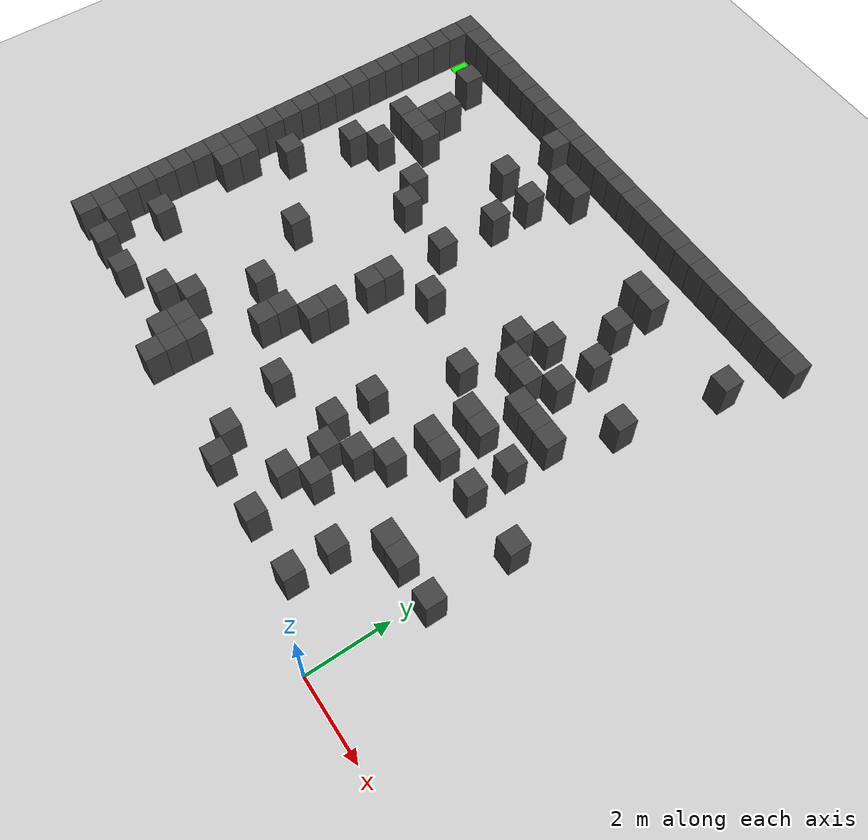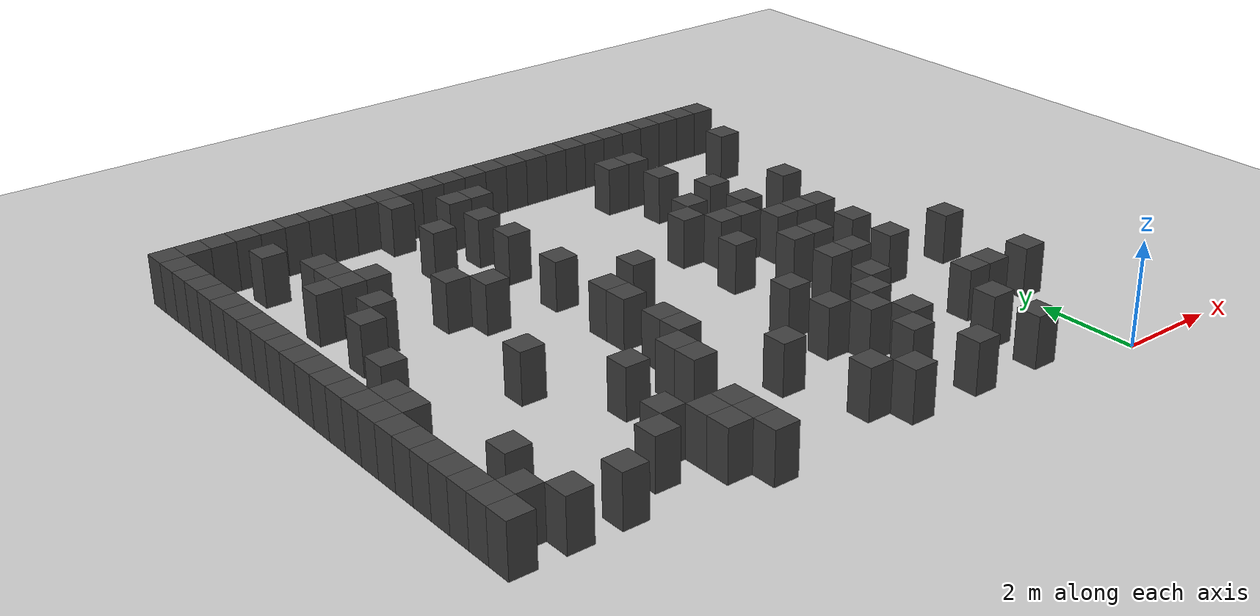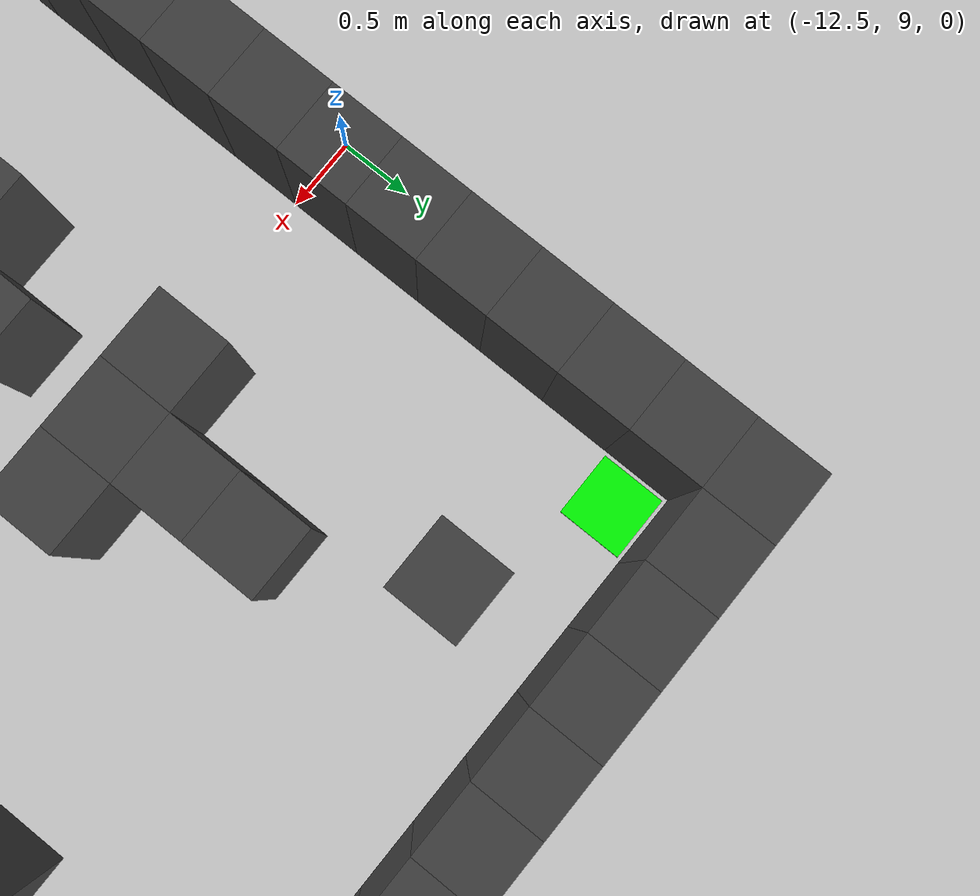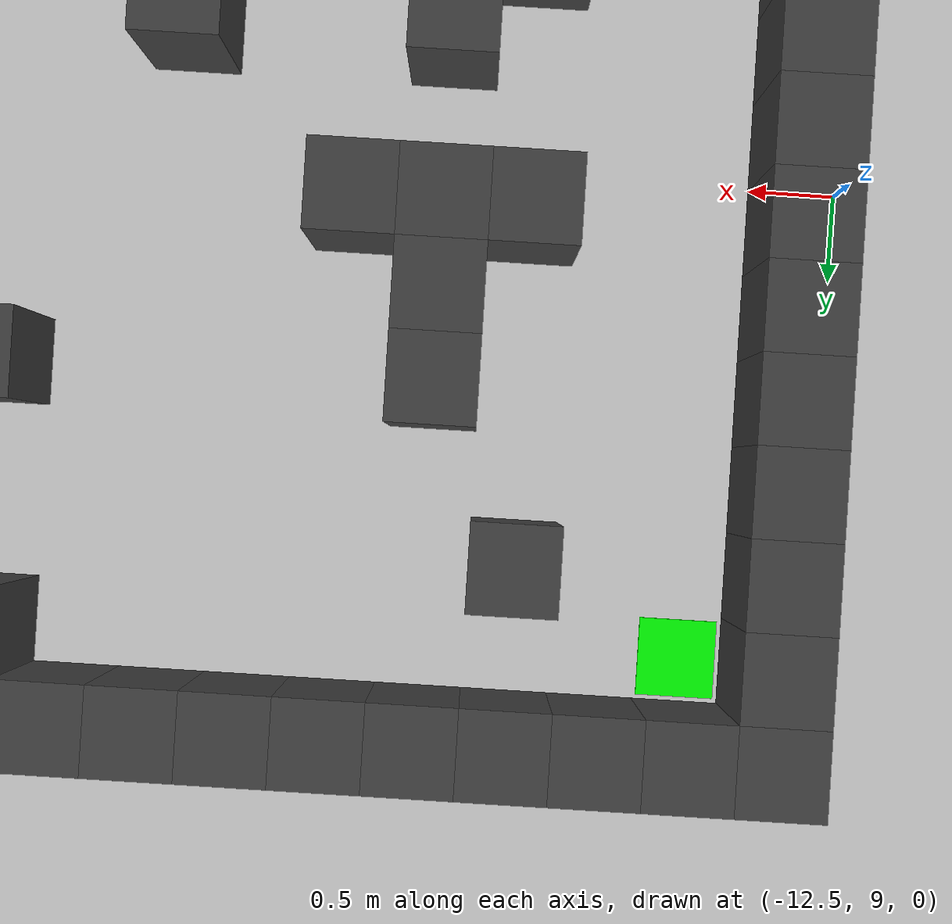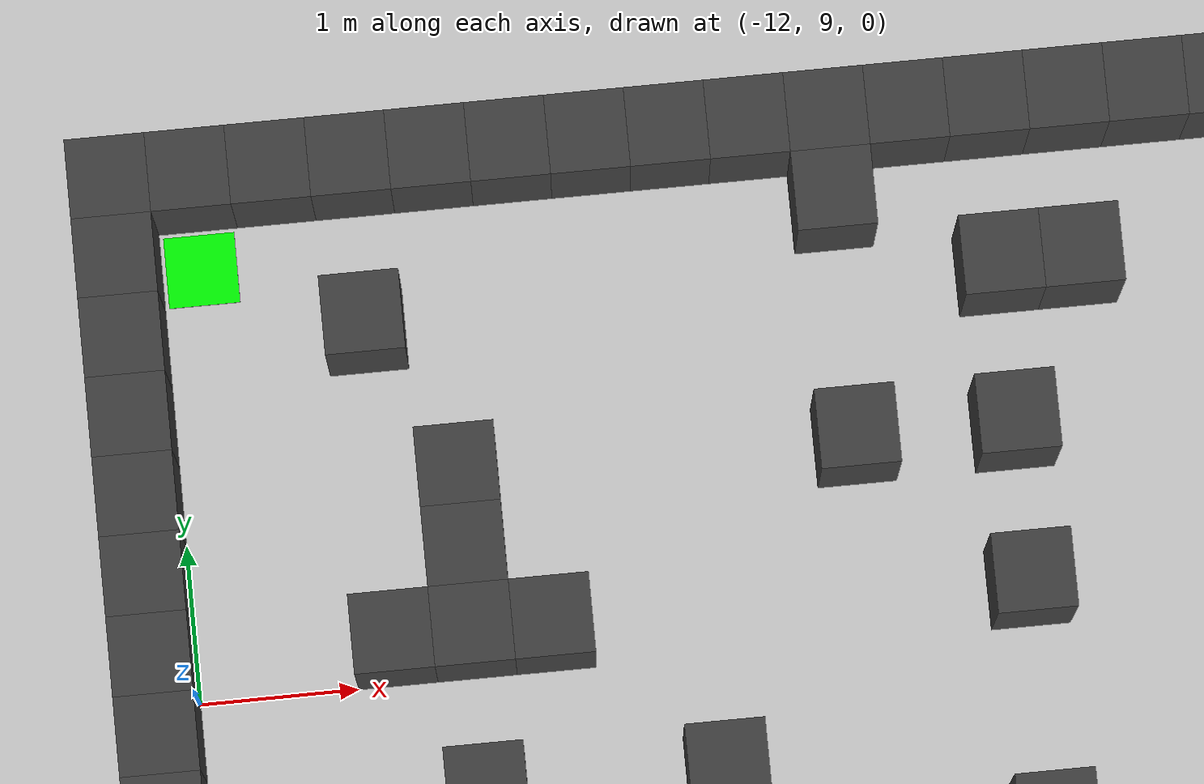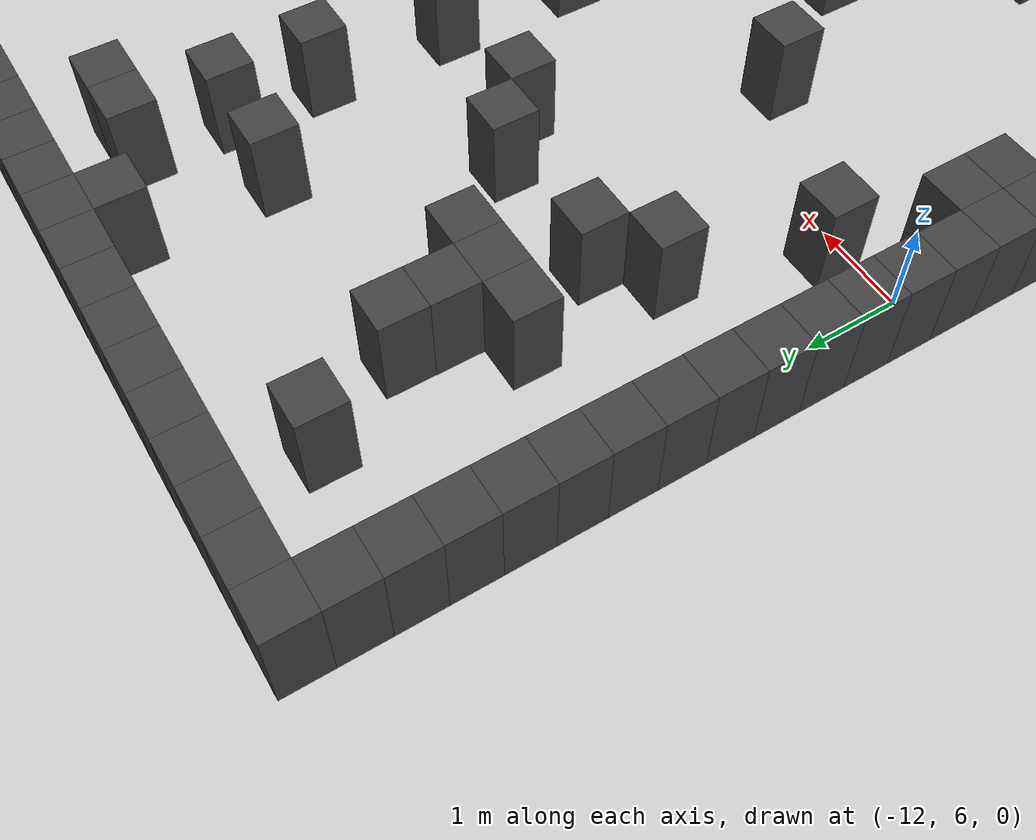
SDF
<sdf version="1.7">
 <world name="map_2627">
  <model name="ground_plane">
   <static>true</static>
   <link name="link">
    <collision name="collision">
     <geometry><plane><normal>0 0 1</normal><size>200 200</size></plane></geometry>
    </collision>
    <visual name="visual">
     <geometry><plane><normal>0 0 1</normal><size>200 200</size></plane></geometry>
     <material><ambient>0.8 0.8 0.8 1</ambient><diffuse>0.8 0.8 0.8 1</diffuse></material>
    </visual>
   </link>
  </model>
  <model name="maze_environment">
   <static>true</static>
   <link name="wall_0">
    <pose>-12.250 12.250 0.500 0 0 0</pose>
    <collision name="col"><geometry><box><size>0.5 0.5 1.0</size></box></geometry></collision>
    <visual name="vis">
     <geometry><box><size>0.5 0.5 1.0</size></box></geometry>
     <material><ambient>0.15 0.15 0.15 1</ambient><diffuse>0.25 0.25 0.25 1</diffuse></material>
    </visual>
   </link>
   <link name="wall_1">
    <pose>-11.750 12.250 0.500 0 0 0</pose>
    <collision name="col"><geometry><box><size>0.5 0.5 1.0</size></box></geometry></collision>
    <visual name="vis">
     <geometry><box><size>0.5 0.5 1.0</size></box></geometry>
     <material><ambient>0.15 0.15 0.15 1</ambient><diffuse>0.25 0.25 0.25 1</diffuse></material>
    </visual>
   </link>
   <link name="wall_2">
    <pose>-11.250 12.250 0.500 0 0 0</pose>
    <collision name="col"><geometry><box><size>0.5 0.5 1.0</size></box></geometry></collision>
    <visual name="vis">
     <geometry><box><size>0.5 0.5 1.0</size></box></geometry>
     <material><ambient>0.15 0.15 0.15 1</ambient><diffuse>0.25 0.25 0.25 1</diffuse></material>
    </visual>
   </link>
   <link name="wall_3">
    <pose>-10.750 12.250 0.500 0 0 0</pose>
    <collision name="col"><geometry><box><size>0.5 0.5 1.0</size></box></geometry></collision>
    <visual name="vis">
     <geometry><box><size>0.5 0.5 1.0</size></box></geometry>
     <material><ambient>0.15 0.15 0.15 1</ambient><diffuse>0.25 0.25 0.25 1</diffuse></material>
    </visual>
   </link>
   <link name="wall_4">
    <pose>-10.250 12.250 0.500 0 0 0</pose>
    <collision name="col"><geometry><box><size>0.5 0.5 1.0</size></box></geometry></collision>
    <visual name="vis">
     <geometry><box><size>0.5 0.5 1.0</size></box></geometry>
     <material><ambient>0.15 0.15 0.15 1</ambient><diffuse>0.25 0.25 0.25 1</diffuse></material>
    </visual>
   </link>
   <link name="wall_5">
    <pose>-9.750 12.250 0.500 0 0 0</pose>
    <collision name="col"><geometry><box><size>0.5 0.5 1.0</size></box></geometry></collision>
    <visual name="vis">
     <geometry><box><size>0.5 0.5 1.0</size></box></geometry>
     <material><ambient>0.15 0.15 0.15 1</ambient><diffuse>0.25 0.25 0.25 1</diffuse></material>
    </visual>
   </link>
   <link name="wall_6">
    <pose>-9.250 12.250 0.500 0 0 0</pose>
    <collision name="col"><geometry><box><size>0.5 0.5 1.0</size></box></geometry></collision>
    <visual name="vis">
     <geometry><box><size>0.5 0.5 1.0</size></box></geometry>
     <material><ambient>0.15 0.15 0.15 1</ambient><diffuse>0.25 0.25 0.25 1</diffuse></material>
    </visual>
   </link>
   <link name="wall_7">
    <pose>-8.750 12.250 0.500 0 0 0</pose>
    <collision name="col"><geometry><box><size>0.5 0.5 1.0</size></box></geometry></collision>
    <visual name="vis">
     <geometry><box><size>0.5 0.5 1.0</size></box></geometry>
     <material><ambient>0.15 0.15 0.15 1</ambient><diffuse>0.25 0.25 0.25 1</diffuse></material>
    </visual>
   </link>
   <link name="wall_8">
    <pose>-8.250 12.250 0.500 0 0 0</pose>
    <collision name="col"><geometry><box><size>0.5 0.5 1.0</size></box></geometry></collision>
    <visual name="vis">
     <geometry><box><size>0.5 0.5 1.0</size></box></geometry>
     <material><ambient>0.15 0.15 0.15 1</ambient><diffuse>0.25 0.25 0.25 1</diffuse></material>
    </visual>
   </link>
   <link name="wall_9">
    <pose>-7.750 12.250 0.500 0 0 0</pose>
    <collision name="col"><geometry><box><size>0.5 0.5 1.0</size></box></geometry></collision>
    <visual name="vis">
     <geometry><box><size>0.5 0.5 1.0</size></box></geometry>
     <material><ambient>0.15 0.15 0.15 1</ambient><diffuse>0.25 0.25 0.25 1</diffuse></material>
    </visual>
   </link>
   <link name="wall_10">
    <pose>-7.250 12.250 0.500 0 0 0</pose>
    <collision name="col"><geometry><box><size>0.5 0.5 1.0</size></box></geometry></collision>
    <visual name="vis">
     <geometry><box><size>0.5 0.5 1.0</size></box></geometry>
     <material><ambient>0.15 0.15 0.15 1</ambient><diffuse>0.25 0.25 0.25 1</diffuse></material>
    </visual>
   </link>
   <link name="wall_11">
    <pose>-6.750 12.250 0.500 0 0 0</pose>
    <collision name="col"><geometry><box><size>0.5 0.5 1.0</size></box></geometry></collision>
    <visual name="vis">
     <geometry><box><size>0.5 0.5 1.0</size></box></geometry>
     <material><ambient>0.15 0.15 0.15 1</ambient><diffuse>0.25 0.25 0.25 1</diffuse></material>
    </visual>
   </link>
   <link name="wall_12">
    <pose>-6.250 12.250 0.500 0 0 0</pose>
    <collision name="col"><geometry><box><size>0.5 0.5 1.0</size></box></geometry></collision>
    <visual name="vis">
     <geometry><box><size>0.5 0.5 1.0</size></box></geometry>
     <material><ambient>0.15 0.15 0.15 1</ambient><diffuse>0.25 0.25 0.25 1</diffuse></material>
    </visual>
   </link>
   <link name="wall_13">
    <pose>-5.750 12.250 0.500 0 0 0</pose>
    <collision name="col"><geometry><box><size>0.5 0.5 1.0</size></box></geometry></collision>
    <visual name="vis">
     <geometry><box><size>0.5 0.5 1.0</size></box></geometry>
     <material><ambient>0.15 0.15 0.15 1</ambient><diffuse>0.25 0.25 0.25 1</diffuse></material>
    </visual>
   </link>
   <link name="wall_14">
    <pose>-5.250 12.250 0.500 0 0 0</pose>
    <collision name="col"><geometry><box><size>0.5 0.5 1.0</size></box></geometry></collision>
    <visual name="vis">
     <geometry><box><size>0.5 0.5 1.0</size></box></geometry>
     <material><ambient>0.15 0.15 0.15 1</ambient><diffuse>0.25 0.25 0.25 1</diffuse></material>
    </visual>
   </link>
   <link name="wall_15">
    <pose>-4.750 12.250 0.500 0 0 0</pose>
    <collision name="col"><geometry><box><size>0.5 0.5 1.0</size></box></geometry></collision>
    <visual name="vis">
     <geometry><box><size>0.5 0.5 1.0</size></box></geometry>
     <material><ambient>0.15 0.15 0.15 1</ambient><diffuse>0.25 0.25 0.25 1</diffuse></material>
    </visual>
   </link>
   <link name="wall_16">
    <pose>-4.250 12.250 0.500 0 0 0</pose>
    <collision name="col"><geometry><box><size>0.5 0.5 1.0</size></box></geometry></collision>
    <visual name="vis">
     <geometry><box><size>0.5 0.5 1.0</size></box></geometry>
     <material><ambient>0.15 0.15 0.15 1</ambient><diffuse>0.25 0.25 0.25 1</diffuse></material>
    </visual>
   </link>
   <link name="wall_17">
    <pose>-3.750 12.250 0.500 0 0 0</pose>
    <collision name="col"><geometry><box><size>0.5 0.5 1.0</size></box></geometry></collision>
    <visual name="vis">
     <geometry><box><size>0.5 0.5 1.0</size></box></geometry>
     <material><ambient>0.15 0.15 0.15 1</ambient><diffuse>0.25 0.25 0.25 1</diffuse></material>
    </visual>
   </link>
   <link name="wall_18">
    <pose>-3.250 12.250 0.500 0 0 0</pose>
    <collision name="col"><geometry><box><size>0.5 0.5 1.0</size></box></geometry></collision>
    <visual name="vis">
     <geometry><box><size>0.5 0.5 1.0</size></box></geometry>
     <material><ambient>0.15 0.15 0.15 1</ambient><diffuse>0.25 0.25 0.25 1</diffuse></material>
    </visual>
   </link>
   <link name="wall_19">
    <pose>-2.750 12.250 0.500 0 0 0</pose>
    <collision name="col"><geometry><box><size>0.5 0.5 1.0</size></box></geometry></collision>
    <visual name="vis">
     <geometry><box><size>0.5 0.5 1.0</size></box></geometry>
     <material><ambient>0.15 0.15 0.15 1</ambient><diffuse>0.25 0.25 0.25 1</diffuse></material>
    </visual>
   </link>
   <link name="wall_20">
    <pose>-2.250 12.250 0.500 0 0 0</pose>
    <collision name="col"><geometry><box><size>0.5 0.5 1.0</size></box></geometry></collision>
    <visual name="vis">
     <geometry><box><size>0.5 0.5 1.0</size></box></geometry>
     <material><ambient>0.15 0.15 0.15 1</ambient><diffuse>0.25 0.25 0.25 1</diffuse></material>
    </visual>
   </link>
   <link name="wall_21">
    <pose>-1.750 12.250 0.500 0 0 0</pose>
    <collision name="col"><geometry><box><size>0.5 0.5 1.0</size></box></geometry></collision>
    <visual name="vis">
     <geometry><box><size>0.5 0.5 1.0</size></box></geometry>
     <material><ambient>0.15 0.15 0.15 1</ambient><diffuse>0.25 0.25 0.25 1</diffuse></material>
    </visual>
   </link>
   <link name="wall_22">
    <pose>-1.250 12.250 0.500 0 0 0</pose>
    <collision name="col"><geometry><box><size>0.5 0.5 1.0</size></box></geometry></collision>
    <visual name="vis">
     <geometry><box><size>0.5 0.5 1.0</size></box></geometry>
     <material><ambient>0.15 0.15 0.15 1</ambient><diffuse>0.25 0.25 0.25 1</diffuse></material>
    </visual>
   </link>
   <link name="wall_23">
    <pose>-0.750 12.250 0.500 0 0 0</pose>
    <collision name="col"><geometry><box><size>0.5 0.5 1.0</size></box></geometry></collision>
    <visual name="vis">
     <geometry><box><size>0.5 0.5 1.0</size></box></geometry>
     <material><ambient>0.15 0.15 0.15 1</ambient><diffuse>0.25 0.25 0.25 1</diffuse></material>
    </visual>
   </link>
   <link name="wall_24">
    <pose>-0.250 12.250 0.500 0 0 0</pose>
    <collision name="col"><geometry><box><size>0.5 0.5 1.0</size></box></geometry></collision>
    <visual name="vis">
     <geometry><box><size>0.5 0.5 1.0</size></box></geometry>
     <material><ambient>0.15 0.15 0.15 1</ambient><diffuse>0.25 0.25 0.25 1</diffuse></material>
    </visual>
   </link>
   <link name="wall_25">
    <pose>0.250 12.250 0.500 0 0 0</pose>
    <collision name="col"><geometry><box><size>0.5 0.5 1.0</size></box></geometry></collision>
    <visual name="vis">
     <geometry><box><size>0.5 0.5 1.0</size></box></geometry>
     <material><ambient>0.15 0.15 0.15 1</ambient><diffuse>0.25 0.25 0.25 1</diffuse></material>
    </visual>
   </link>
   <link name="wall_50">
    <pose>-12.250 11.750 0.500 0 0 0</pose>
    <collision name="col"><geometry><box><size>0.5 0.5 1.0</size></box></geometry></collision>
    <visual name="vis">
     <geometry><box><size>0.5 0.5 1.0</size></box></geometry>
     <material><ambient>0.15 0.15 0.15 1</ambient><diffuse>0.25 0.25 0.25 1</diffuse></material>
    </visual>
   </link>
   <link name="wall_51">
    <pose>-7.750 11.750 0.500 0 0 0</pose>
    <collision name="col"><geometry><box><size>0.5 0.5 1.0</size></box></geometry></collision>
    <visual name="vis">
     <geometry><box><size>0.5 0.5 1.0</size></box></geometry>
     <material><ambient>0.15 0.15 0.15 1</ambient><diffuse>0.25 0.25 0.25 1</diffuse></material>
    </visual>
   </link>
   <link name="wall_54">
    <pose>-12.250 11.250 0.500 0 0 0</pose>
    <collision name="col"><geometry><box><size>0.5 0.5 1.0</size></box></geometry></collision>
    <visual name="vis">
     <geometry><box><size>0.5 0.5 1.0</size></box></geometry>
     <material><ambient>0.15 0.15 0.15 1</ambient><diffuse>0.25 0.25 0.25 1</diffuse></material>
    </visual>
   </link>
   <link name="wall_55">
    <pose>-10.750 11.250 0.500 0 0 0</pose>
    <collision name="col"><geometry><box><size>0.5 0.5 1.0</size></box></geometry></collision>
    <visual name="vis">
     <geometry><box><size>0.5 0.5 1.0</size></box></geometry>
     <material><ambient>0.15 0.15 0.15 1</ambient><diffuse>0.25 0.25 0.25 1</diffuse></material>
    </visual>
   </link>
   <link name="wall_56">
    <pose>-6.750 11.250 0.500 0 0 0</pose>
    <collision name="col"><geometry><box><size>0.5 0.5 1.0</size></box></geometry></collision>
    <visual name="vis">
     <geometry><box><size>0.5 0.5 1.0</size></box></geometry>
     <material><ambient>0.15 0.15 0.15 1</ambient><diffuse>0.25 0.25 0.25 1</diffuse></material>
    </visual>
   </link>
   <link name="wall_57">
    <pose>-6.250 11.250 0.500 0 0 0</pose>
    <collision name="col"><geometry><box><size>0.5 0.5 1.0</size></box></geometry></collision>
    <visual name="vis">
     <geometry><box><size>0.5 0.5 1.0</size></box></geometry>
     <material><ambient>0.15 0.15 0.15 1</ambient><diffuse>0.25 0.25 0.25 1</diffuse></material>
    </visual>
   </link>
   <link name="wall_62">
    <pose>-12.250 10.750 0.500 0 0 0</pose>
    <collision name="col"><geometry><box><size>0.5 0.5 1.0</size></box></geometry></collision>
    <visual name="vis">
     <geometry><box><size>0.5 0.5 1.0</size></box></geometry>
     <material><ambient>0.15 0.15 0.15 1</ambient><diffuse>0.25 0.25 0.25 1</diffuse></material>
    </visual>
   </link>
   <link name="wall_63">
    <pose>-3.250 10.750 0.500 0 0 0</pose>
    <collision name="col"><geometry><box><size>0.5 0.5 1.0</size></box></geometry></collision>
    <visual name="vis">
     <geometry><box><size>0.5 0.5 1.0</size></box></geometry>
     <material><ambient>0.15 0.15 0.15 1</ambient><diffuse>0.25 0.25 0.25 1</diffuse></material>
    </visual>
   </link>
   <link name="wall_64">
    <pose>-2.750 10.750 0.500 0 0 0</pose>
    <collision name="col"><geometry><box><size>0.5 0.5 1.0</size></box></geometry></collision>
    <visual name="vis">
     <geometry><box><size>0.5 0.5 1.0</size></box></geometry>
     <material><ambient>0.15 0.15 0.15 1</ambient><diffuse>0.25 0.25 0.25 1</diffuse></material>
    </visual>
   </link>
   <link name="wall_65">
    <pose>-0.250 10.750 0.500 0 0 0</pose>
    <collision name="col"><geometry><box><size>0.5 0.5 1.0</size></box></geometry></collision>
    <visual name="vis">
     <geometry><box><size>0.5 0.5 1.0</size></box></geometry>
     <material><ambient>0.15 0.15 0.15 1</ambient><diffuse>0.25 0.25 0.25 1</diffuse></material>
    </visual>
   </link>
   <link name="wall_68">
    <pose>-12.250 10.250 0.500 0 0 0</pose>
    <collision name="col"><geometry><box><size>0.5 0.5 1.0</size></box></geometry></collision>
    <visual name="vis">
     <geometry><box><size>0.5 0.5 1.0</size></box></geometry>
     <material><ambient>0.15 0.15 0.15 1</ambient><diffuse>0.25 0.25 0.25 1</diffuse></material>
    </visual>
   </link>
   <link name="wall_69">
    <pose>-10.250 10.250 0.500 0 0 0</pose>
    <collision name="col"><geometry><box><size>0.5 0.5 1.0</size></box></geometry></collision>
    <visual name="vis">
     <geometry><box><size>0.5 0.5 1.0</size></box></geometry>
     <material><ambient>0.15 0.15 0.15 1</ambient><diffuse>0.25 0.25 0.25 1</diffuse></material>
    </visual>
   </link>
   <link name="wall_70">
    <pose>-7.750 10.250 0.500 0 0 0</pose>
    <collision name="col"><geometry><box><size>0.5 0.5 1.0</size></box></geometry></collision>
    <visual name="vis">
     <geometry><box><size>0.5 0.5 1.0</size></box></geometry>
     <material><ambient>0.15 0.15 0.15 1</ambient><diffuse>0.25 0.25 0.25 1</diffuse></material>
    </visual>
   </link>
   <link name="wall_71">
    <pose>-6.750 10.250 0.500 0 0 0</pose>
    <collision name="col"><geometry><box><size>0.5 0.5 1.0</size></box></geometry></collision>
    <visual name="vis">
     <geometry><box><size>0.5 0.5 1.0</size></box></geometry>
     <material><ambient>0.15 0.15 0.15 1</ambient><diffuse>0.25 0.25 0.25 1</diffuse></material>
    </visual>
   </link>
   <link name="wall_77">
    <pose>-12.250 9.750 0.500 0 0 0</pose>
    <collision name="col"><geometry><box><size>0.5 0.5 1.0</size></box></geometry></collision>
    <visual name="vis">
     <geometry><box><size>0.5 0.5 1.0</size></box></geometry>
     <material><ambient>0.15 0.15 0.15 1</ambient><diffuse>0.25 0.25 0.25 1</diffuse></material>
    </visual>
   </link>
   <link name="wall_78">
    <pose>-10.250 9.750 0.500 0 0 0</pose>
    <collision name="col"><geometry><box><size>0.5 0.5 1.0</size></box></geometry></collision>
    <visual name="vis">
     <geometry><box><size>0.5 0.5 1.0</size></box></geometry>
     <material><ambient>0.15 0.15 0.15 1</ambient><diffuse>0.25 0.25 0.25 1</diffuse></material>
    </visual>
   </link>
   <link name="wall_79">
    <pose>-2.750 9.750 0.500 0 0 0</pose>
    <collision name="col"><geometry><box><size>0.5 0.5 1.0</size></box></geometry></collision>
    <visual name="vis">
     <geometry><box><size>0.5 0.5 1.0</size></box></geometry>
     <material><ambient>0.15 0.15 0.15 1</ambient><diffuse>0.25 0.25 0.25 1</diffuse></material>
    </visual>
   </link>
   <link name="wall_86">
    <pose>-12.250 9.250 0.500 0 0 0</pose>
    <collision name="col"><geometry><box><size>0.5 0.5 1.0</size></box></geometry></collision>
    <visual name="vis">
     <geometry><box><size>0.5 0.5 1.0</size></box></geometry>
     <material><ambient>0.15 0.15 0.15 1</ambient><diffuse>0.25 0.25 0.25 1</diffuse></material>
    </visual>
   </link>
   <link name="wall_87">
    <pose>-10.750 9.250 0.500 0 0 0</pose>
    <collision name="col"><geometry><box><size>0.5 0.5 1.0</size></box></geometry></collision>
    <visual name="vis">
     <geometry><box><size>0.5 0.5 1.0</size></box></geometry>
     <material><ambient>0.15 0.15 0.15 1</ambient><diffuse>0.25 0.25 0.25 1</diffuse></material>
    </visual>
   </link>
   <link name="wall_88">
    <pose>-10.250 9.250 0.500 0 0 0</pose>
    <collision name="col"><geometry><box><size>0.5 0.5 1.0</size></box></geometry></collision>
    <visual name="vis">
     <geometry><box><size>0.5 0.5 1.0</size></box></geometry>
     <material><ambient>0.15 0.15 0.15 1</ambient><diffuse>0.25 0.25 0.25 1</diffuse></material>
    </visual>
   </link>
   <link name="wall_89">
    <pose>-9.750 9.250 0.500 0 0 0</pose>
    <collision name="col"><geometry><box><size>0.5 0.5 1.0</size></box></geometry></collision>
    <visual name="vis">
     <geometry><box><size>0.5 0.5 1.0</size></box></geometry>
     <material><ambient>0.15 0.15 0.15 1</ambient><diffuse>0.25 0.25 0.25 1</diffuse></material>
    </visual>
   </link>
   <link name="wall_90">
    <pose>-6.750 9.250 0.500 0 0 0</pose>
    <collision name="col"><geometry><box><size>0.5 0.5 1.0</size></box></geometry></collision>
    <visual name="vis">
     <geometry><box><size>0.5 0.5 1.0</size></box></geometry>
     <material><ambient>0.15 0.15 0.15 1</ambient><diffuse>0.25 0.25 0.25 1</diffuse></material>
    </visual>
   </link>
   <link name="wall_97">
    <pose>-12.250 8.750 0.500 0 0 0</pose>
    <collision name="col"><geometry><box><size>0.5 0.5 1.0</size></box></geometry></collision>
    <visual name="vis">
     <geometry><box><size>0.5 0.5 1.0</size></box></geometry>
     <material><ambient>0.15 0.15 0.15 1</ambient><diffuse>0.25 0.25 0.25 1</diffuse></material>
    </visual>
   </link>
   <link name="wall_98">
    <pose>-2.250 8.750 0.500 0 0 0</pose>
    <collision name="col"><geometry><box><size>0.5 0.5 1.0</size></box></geometry></collision>
    <visual name="vis">
     <geometry><box><size>0.5 0.5 1.0</size></box></geometry>
     <material><ambient>0.15 0.15 0.15 1</ambient><diffuse>0.25 0.25 0.25 1</diffuse></material>
    </visual>
   </link>
   <link name="wall_105">
    <pose>-12.250 8.250 0.500 0 0 0</pose>
    <collision name="col"><geometry><box><size>0.5 0.5 1.0</size></box></geometry></collision>
    <visual name="vis">
     <geometry><box><size>0.5 0.5 1.0</size></box></geometry>
     <material><ambient>0.15 0.15 0.15 1</ambient><diffuse>0.25 0.25 0.25 1</diffuse></material>
    </visual>
   </link>
   <link name="wall_106">
    <pose>-10.250 8.250 0.500 0 0 0</pose>
    <collision name="col"><geometry><box><size>0.5 0.5 1.0</size></box></geometry></collision>
    <visual name="vis">
     <geometry><box><size>0.5 0.5 1.0</size></box></geometry>
     <material><ambient>0.15 0.15 0.15 1</ambient><diffuse>0.25 0.25 0.25 1</diffuse></material>
    </visual>
   </link>
   <link name="wall_107">
    <pose>-8.750 8.250 0.500 0 0 0</pose>
    <collision name="col"><geometry><box><size>0.5 0.5 1.0</size></box></geometry></collision>
    <visual name="vis">
     <geometry><box><size>0.5 0.5 1.0</size></box></geometry>
     <material><ambient>0.15 0.15 0.15 1</ambient><diffuse>0.25 0.25 0.25 1</diffuse></material>
    </visual>
   </link>
   <link name="wall_108">
    <pose>-3.250 8.250 0.500 0 0 0</pose>
    <collision name="col"><geometry><box><size>0.5 0.5 1.0</size></box></geometry></collision>
    <visual name="vis">
     <geometry><box><size>0.5 0.5 1.0</size></box></geometry>
     <material><ambient>0.15 0.15 0.15 1</ambient><diffuse>0.25 0.25 0.25 1</diffuse></material>
    </visual>
   </link>
   <link name="wall_109">
    <pose>-0.750 8.250 0.500 0 0 0</pose>
    <collision name="col"><geometry><box><size>0.5 0.5 1.0</size></box></geometry></collision>
    <visual name="vis">
     <geometry><box><size>0.5 0.5 1.0</size></box></geometry>
     <material><ambient>0.15 0.15 0.15 1</ambient><diffuse>0.25 0.25 0.25 1</diffuse></material>
    </visual>
   </link>
   <link name="wall_115">
    <pose>-12.250 7.750 0.500 0 0 0</pose>
    <collision name="col"><geometry><box><size>0.5 0.5 1.0</size></box></geometry></collision>
    <visual name="vis">
     <geometry><box><size>0.5 0.5 1.0</size></box></geometry>
     <material><ambient>0.15 0.15 0.15 1</ambient><diffuse>0.25 0.25 0.25 1</diffuse></material>
    </visual>
   </link>
   <link name="wall_116">
    <pose>-10.750 7.750 0.500 0 0 0</pose>
    <collision name="col"><geometry><box><size>0.5 0.5 1.0</size></box></geometry></collision>
    <visual name="vis">
     <geometry><box><size>0.5 0.5 1.0</size></box></geometry>
     <material><ambient>0.15 0.15 0.15 1</ambient><diffuse>0.25 0.25 0.25 1</diffuse></material>
    </visual>
   </link>
   <link name="wall_117">
    <pose>-8.250 7.750 0.500 0 0 0</pose>
    <collision name="col"><geometry><box><size>0.5 0.5 1.0</size></box></geometry></collision>
    <visual name="vis">
     <geometry><box><size>0.5 0.5 1.0</size></box></geometry>
     <material><ambient>0.15 0.15 0.15 1</ambient><diffuse>0.25 0.25 0.25 1</diffuse></material>
    </visual>
   </link>
   <link name="wall_118">
    <pose>-6.750 7.750 0.500 0 0 0</pose>
    <collision name="col"><geometry><box><size>0.5 0.5 1.0</size></box></geometry></collision>
    <visual name="vis">
     <geometry><box><size>0.5 0.5 1.0</size></box></geometry>
     <material><ambient>0.15 0.15 0.15 1</ambient><diffuse>0.25 0.25 0.25 1</diffuse></material>
    </visual>
   </link>
   <link name="wall_119">
    <pose>-3.750 7.750 0.500 0 0 0</pose>
    <collision name="col"><geometry><box><size>0.5 0.5 1.0</size></box></geometry></collision>
    <visual name="vis">
     <geometry><box><size>0.5 0.5 1.0</size></box></geometry>
     <material><ambient>0.15 0.15 0.15 1</ambient><diffuse>0.25 0.25 0.25 1</diffuse></material>
    </visual>
   </link>
   <link name="wall_120">
    <pose>-2.250 7.750 0.500 0 0 0</pose>
    <collision name="col"><geometry><box><size>0.5 0.5 1.0</size></box></geometry></collision>
    <visual name="vis">
     <geometry><box><size>0.5 0.5 1.0</size></box></geometry>
     <material><ambient>0.15 0.15 0.15 1</ambient><diffuse>0.25 0.25 0.25 1</diffuse></material>
    </visual>
   </link>
   <link name="wall_126">
    <pose>-12.250 7.250 0.500 0 0 0</pose>
    <collision name="col"><geometry><box><size>0.5 0.5 1.0</size></box></geometry></collision>
    <visual name="vis">
     <geometry><box><size>0.5 0.5 1.0</size></box></geometry>
     <material><ambient>0.15 0.15 0.15 1</ambient><diffuse>0.25 0.25 0.25 1</diffuse></material>
    </visual>
   </link>
   <link name="wall_127">
    <pose>-3.250 7.250 0.500 0 0 0</pose>
    <collision name="col"><geometry><box><size>0.5 0.5 1.0</size></box></geometry></collision>
    <visual name="vis">
     <geometry><box><size>0.5 0.5 1.0</size></box></geometry>
     <material><ambient>0.15 0.15 0.15 1</ambient><diffuse>0.25 0.25 0.25 1</diffuse></material>
    </visual>
   </link>
   <link name="wall_128">
    <pose>-2.750 7.250 0.500 0 0 0</pose>
    <collision name="col"><geometry><box><size>0.5 0.5 1.0</size></box></geometry></collision>
    <visual name="vis">
     <geometry><box><size>0.5 0.5 1.0</size></box></geometry>
     <material><ambient>0.15 0.15 0.15 1</ambient><diffuse>0.25 0.25 0.25 1</diffuse></material>
    </visual>
   </link>
   <link name="wall_133">
    <pose>-12.250 6.750 0.500 0 0 0</pose>
    <collision name="col"><geometry><box><size>0.5 0.5 1.0</size></box></geometry></collision>
    <visual name="vis">
     <geometry><box><size>0.5 0.5 1.0</size></box></geometry>
     <material><ambient>0.15 0.15 0.15 1</ambient><diffuse>0.25 0.25 0.25 1</diffuse></material>
    </visual>
   </link>
   <link name="wall_134">
    <pose>-5.750 6.750 0.500 0 0 0</pose>
    <collision name="col"><geometry><box><size>0.5 0.5 1.0</size></box></geometry></collision>
    <visual name="vis">
     <geometry><box><size>0.5 0.5 1.0</size></box></geometry>
     <material><ambient>0.15 0.15 0.15 1</ambient><diffuse>0.25 0.25 0.25 1</diffuse></material>
    </visual>
   </link>
   <link name="wall_135">
    <pose>-2.250 6.750 0.500 0 0 0</pose>
    <collision name="col"><geometry><box><size>0.5 0.5 1.0</size></box></geometry></collision>
    <visual name="vis">
     <geometry><box><size>0.5 0.5 1.0</size></box></geometry>
     <material><ambient>0.15 0.15 0.15 1</ambient><diffuse>0.25 0.25 0.25 1</diffuse></material>
    </visual>
   </link>
   <link name="wall_136">
    <pose>-1.750 6.750 0.500 0 0 0</pose>
    <collision name="col"><geometry><box><size>0.5 0.5 1.0</size></box></geometry></collision>
    <visual name="vis">
     <geometry><box><size>0.5 0.5 1.0</size></box></geometry>
     <material><ambient>0.15 0.15 0.15 1</ambient><diffuse>0.25 0.25 0.25 1</diffuse></material>
    </visual>
   </link>
   <link name="wall_137">
    <pose>-1.250 6.750 0.500 0 0 0</pose>
    <collision name="col"><geometry><box><size>0.5 0.5 1.0</size></box></geometry></collision>
    <visual name="vis">
     <geometry><box><size>0.5 0.5 1.0</size></box></geometry>
     <material><ambient>0.15 0.15 0.15 1</ambient><diffuse>0.25 0.25 0.25 1</diffuse></material>
    </visual>
   </link>
   <link name="wall_143">
    <pose>-12.250 6.250 0.500 0 0 0</pose>
    <collision name="col"><geometry><box><size>0.5 0.5 1.0</size></box></geometry></collision>
    <visual name="vis">
     <geometry><box><size>0.5 0.5 1.0</size></box></geometry>
     <material><ambient>0.15 0.15 0.15 1</ambient><diffuse>0.25 0.25 0.25 1</diffuse></material>
    </visual>
   </link>
   <link name="wall_144">
    <pose>-11.250 6.250 0.500 0 0 0</pose>
    <collision name="col"><geometry><box><size>0.5 0.5 1.0</size></box></geometry></collision>
    <visual name="vis">
     <geometry><box><size>0.5 0.5 1.0</size></box></geometry>
     <material><ambient>0.15 0.15 0.15 1</ambient><diffuse>0.25 0.25 0.25 1</diffuse></material>
    </visual>
   </link>
   <link name="wall_145">
    <pose>-6.750 6.250 0.500 0 0 0</pose>
    <collision name="col"><geometry><box><size>0.5 0.5 1.0</size></box></geometry></collision>
    <visual name="vis">
     <geometry><box><size>0.5 0.5 1.0</size></box></geometry>
     <material><ambient>0.15 0.15 0.15 1</ambient><diffuse>0.25 0.25 0.25 1</diffuse></material>
    </visual>
   </link>
   <link name="wall_146">
    <pose>-3.750 6.250 0.500 0 0 0</pose>
    <collision name="col"><geometry><box><size>0.5 0.5 1.0</size></box></geometry></collision>
    <visual name="vis">
     <geometry><box><size>0.5 0.5 1.0</size></box></geometry>
     <material><ambient>0.15 0.15 0.15 1</ambient><diffuse>0.25 0.25 0.25 1</diffuse></material>
    </visual>
   </link>
   <link name="wall_153">
    <pose>-12.250 5.750 0.500 0 0 0</pose>
    <collision name="col"><geometry><box><size>0.5 0.5 1.0</size></box></geometry></collision>
    <visual name="vis">
     <geometry><box><size>0.5 0.5 1.0</size></box></geometry>
     <material><ambient>0.15 0.15 0.15 1</ambient><diffuse>0.25 0.25 0.25 1</diffuse></material>
    </visual>
   </link>
   <link name="wall_154">
    <pose>-6.750 5.750 0.500 0 0 0</pose>
    <collision name="col"><geometry><box><size>0.5 0.5 1.0</size></box></geometry></collision>
    <visual name="vis">
     <geometry><box><size>0.5 0.5 1.0</size></box></geometry>
     <material><ambient>0.15 0.15 0.15 1</ambient><diffuse>0.25 0.25 0.25 1</diffuse></material>
    </visual>
   </link>
   <link name="wall_155">
    <pose>-2.750 5.750 0.500 0 0 0</pose>
    <collision name="col"><geometry><box><size>0.5 0.5 1.0</size></box></geometry></collision>
    <visual name="vis">
     <geometry><box><size>0.5 0.5 1.0</size></box></geometry>
     <material><ambient>0.15 0.15 0.15 1</ambient><diffuse>0.25 0.25 0.25 1</diffuse></material>
    </visual>
   </link>
   <link name="wall_156">
    <pose>-2.250 5.750 0.500 0 0 0</pose>
    <collision name="col"><geometry><box><size>0.5 0.5 1.0</size></box></geometry></collision>
    <visual name="vis">
     <geometry><box><size>0.5 0.5 1.0</size></box></geometry>
     <material><ambient>0.15 0.15 0.15 1</ambient><diffuse>0.25 0.25 0.25 1</diffuse></material>
    </visual>
   </link>
   <link name="wall_157">
    <pose>-1.250 5.750 0.500 0 0 0</pose>
    <collision name="col"><geometry><box><size>0.5 0.5 1.0</size></box></geometry></collision>
    <visual name="vis">
     <geometry><box><size>0.5 0.5 1.0</size></box></geometry>
     <material><ambient>0.15 0.15 0.15 1</ambient><diffuse>0.25 0.25 0.25 1</diffuse></material>
    </visual>
   </link>
   <link name="wall_160">
    <pose>-12.250 5.250 0.500 0 0 0</pose>
    <collision name="col"><geometry><box><size>0.5 0.5 1.0</size></box></geometry></collision>
    <visual name="vis">
     <geometry><box><size>0.5 0.5 1.0</size></box></geometry>
     <material><ambient>0.15 0.15 0.15 1</ambient><diffuse>0.25 0.25 0.25 1</diffuse></material>
    </visual>
   </link>
   <link name="wall_161">
    <pose>-11.750 5.250 0.500 0 0 0</pose>
    <collision name="col"><geometry><box><size>0.5 0.5 1.0</size></box></geometry></collision>
    <visual name="vis">
     <geometry><box><size>0.5 0.5 1.0</size></box></geometry>
     <material><ambient>0.15 0.15 0.15 1</ambient><diffuse>0.25 0.25 0.25 1</diffuse></material>
    </visual>
   </link>
   <link name="wall_162">
    <pose>-9.250 5.250 0.500 0 0 0</pose>
    <collision name="col"><geometry><box><size>0.5 0.5 1.0</size></box></geometry></collision>
    <visual name="vis">
     <geometry><box><size>0.5 0.5 1.0</size></box></geometry>
     <material><ambient>0.15 0.15 0.15 1</ambient><diffuse>0.25 0.25 0.25 1</diffuse></material>
    </visual>
   </link>
   <link name="wall_167">
    <pose>-12.250 4.750 0.500 0 0 0</pose>
    <collision name="col"><geometry><box><size>0.5 0.5 1.0</size></box></geometry></collision>
    <visual name="vis">
     <geometry><box><size>0.5 0.5 1.0</size></box></geometry>
     <material><ambient>0.15 0.15 0.15 1</ambient><diffuse>0.25 0.25 0.25 1</diffuse></material>
    </visual>
   </link>
   <link name="wall_168">
    <pose>-11.750 4.750 0.500 0 0 0</pose>
    <collision name="col"><geometry><box><size>0.5 0.5 1.0</size></box></geometry></collision>
    <visual name="vis">
     <geometry><box><size>0.5 0.5 1.0</size></box></geometry>
     <material><ambient>0.15 0.15 0.15 1</ambient><diffuse>0.25 0.25 0.25 1</diffuse></material>
    </visual>
   </link>
   <link name="wall_169">
    <pose>-6.750 4.750 0.500 0 0 0</pose>
    <collision name="col"><geometry><box><size>0.5 0.5 1.0</size></box></geometry></collision>
    <visual name="vis">
     <geometry><box><size>0.5 0.5 1.0</size></box></geometry>
     <material><ambient>0.15 0.15 0.15 1</ambient><diffuse>0.25 0.25 0.25 1</diffuse></material>
    </visual>
   </link>
   <link name="wall_170">
    <pose>-2.750 4.750 0.500 0 0 0</pose>
    <collision name="col"><geometry><box><size>0.5 0.5 1.0</size></box></geometry></collision>
    <visual name="vis">
     <geometry><box><size>0.5 0.5 1.0</size></box></geometry>
     <material><ambient>0.15 0.15 0.15 1</ambient><diffuse>0.25 0.25 0.25 1</diffuse></material>
    </visual>
   </link>
   <link name="wall_171">
    <pose>-2.250 4.750 0.500 0 0 0</pose>
    <collision name="col"><geometry><box><size>0.5 0.5 1.0</size></box></geometry></collision>
    <visual name="vis">
     <geometry><box><size>0.5 0.5 1.0</size></box></geometry>
     <material><ambient>0.15 0.15 0.15 1</ambient><diffuse>0.25 0.25 0.25 1</diffuse></material>
    </visual>
   </link>
   <link name="wall_172">
    <pose>-1.250 4.750 0.500 0 0 0</pose>
    <collision name="col"><geometry><box><size>0.5 0.5 1.0</size></box></geometry></collision>
    <visual name="vis">
     <geometry><box><size>0.5 0.5 1.0</size></box></geometry>
     <material><ambient>0.15 0.15 0.15 1</ambient><diffuse>0.25 0.25 0.25 1</diffuse></material>
    </visual>
   </link>
   <link name="wall_173">
    <pose>0.250 4.750 0.500 0 0 0</pose>
    <collision name="col"><geometry><box><size>0.5 0.5 1.0</size></box></geometry></collision>
    <visual name="vis">
     <geometry><box><size>0.5 0.5 1.0</size></box></geometry>
     <material><ambient>0.15 0.15 0.15 1</ambient><diffuse>0.25 0.25 0.25 1</diffuse></material>
    </visual>
   </link>
   <link name="wall_178">
    <pose>-12.250 4.250 0.500 0 0 0</pose>
    <collision name="col"><geometry><box><size>0.5 0.5 1.0</size></box></geometry></collision>
    <visual name="vis">
     <geometry><box><size>0.5 0.5 1.0</size></box></geometry>
     <material><ambient>0.15 0.15 0.15 1</ambient><diffuse>0.25 0.25 0.25 1</diffuse></material>
    </visual>
   </link>
   <link name="wall_179">
    <pose>-6.750 4.250 0.500 0 0 0</pose>
    <collision name="col"><geometry><box><size>0.5 0.5 1.0</size></box></geometry></collision>
    <visual name="vis">
     <geometry><box><size>0.5 0.5 1.0</size></box></geometry>
     <material><ambient>0.15 0.15 0.15 1</ambient><diffuse>0.25 0.25 0.25 1</diffuse></material>
    </visual>
   </link>
   <link name="wall_180">
    <pose>-4.250 4.250 0.500 0 0 0</pose>
    <collision name="col"><geometry><box><size>0.5 0.5 1.0</size></box></geometry></collision>
    <visual name="vis">
     <geometry><box><size>0.5 0.5 1.0</size></box></geometry>
     <material><ambient>0.15 0.15 0.15 1</ambient><diffuse>0.25 0.25 0.25 1</diffuse></material>
    </visual>
   </link>
   <link name="wall_188">
    <pose>-12.250 3.750 0.500 0 0 0</pose>
    <collision name="col"><geometry><box><size>0.5 0.5 1.0</size></box></geometry></collision>
    <visual name="vis">
     <geometry><box><size>0.5 0.5 1.0</size></box></geometry>
     <material><ambient>0.15 0.15 0.15 1</ambient><diffuse>0.25 0.25 0.25 1</diffuse></material>
    </visual>
   </link>
   <link name="wall_189">
    <pose>-8.250 3.750 0.500 0 0 0</pose>
    <collision name="col"><geometry><box><size>0.5 0.5 1.0</size></box></geometry></collision>
    <visual name="vis">
     <geometry><box><size>0.5 0.5 1.0</size></box></geometry>
     <material><ambient>0.15 0.15 0.15 1</ambient><diffuse>0.25 0.25 0.25 1</diffuse></material>
    </visual>
   </link>
   <link name="wall_190">
    <pose>-7.250 3.750 0.500 0 0 0</pose>
    <collision name="col"><geometry><box><size>0.5 0.5 1.0</size></box></geometry></collision>
    <visual name="vis">
     <geometry><box><size>0.5 0.5 1.0</size></box></geometry>
     <material><ambient>0.15 0.15 0.15 1</ambient><diffuse>0.25 0.25 0.25 1</diffuse></material>
    </visual>
   </link>
   <link name="wall_191">
    <pose>-2.750 3.750 0.500 0 0 0</pose>
    <collision name="col"><geometry><box><size>0.5 0.5 1.0</size></box></geometry></collision>
    <visual name="vis">
     <geometry><box><size>0.5 0.5 1.0</size></box></geometry>
     <material><ambient>0.15 0.15 0.15 1</ambient><diffuse>0.25 0.25 0.25 1</diffuse></material>
    </visual>
   </link>
   <link name="wall_195">
    <pose>-12.250 3.250 0.500 0 0 0</pose>
    <collision name="col"><geometry><box><size>0.5 0.5 1.0</size></box></geometry></collision>
    <visual name="vis">
     <geometry><box><size>0.5 0.5 1.0</size></box></geometry>
     <material><ambient>0.15 0.15 0.15 1</ambient><diffuse>0.25 0.25 0.25 1</diffuse></material>
    </visual>
   </link>
   <link name="wall_196">
    <pose>-7.250 3.250 0.500 0 0 0</pose>
    <collision name="col"><geometry><box><size>0.5 0.5 1.0</size></box></geometry></collision>
    <visual name="vis">
     <geometry><box><size>0.5 0.5 1.0</size></box></geometry>
     <material><ambient>0.15 0.15 0.15 1</ambient><diffuse>0.25 0.25 0.25 1</diffuse></material>
    </visual>
   </link>
   <link name="wall_197">
    <pose>-4.250 3.250 0.500 0 0 0</pose>
    <collision name="col"><geometry><box><size>0.5 0.5 1.0</size></box></geometry></collision>
    <visual name="vis">
     <geometry><box><size>0.5 0.5 1.0</size></box></geometry>
     <material><ambient>0.15 0.15 0.15 1</ambient><diffuse>0.25 0.25 0.25 1</diffuse></material>
    </visual>
   </link>
   <link name="wall_198">
    <pose>-3.250 3.250 0.500 0 0 0</pose>
    <collision name="col"><geometry><box><size>0.5 0.5 1.0</size></box></geometry></collision>
    <visual name="vis">
     <geometry><box><size>0.5 0.5 1.0</size></box></geometry>
     <material><ambient>0.15 0.15 0.15 1</ambient><diffuse>0.25 0.25 0.25 1</diffuse></material>
    </visual>
   </link>
   <link name="wall_205">
    <pose>-12.250 2.750 0.500 0 0 0</pose>
    <collision name="col"><geometry><box><size>0.5 0.5 1.0</size></box></geometry></collision>
    <visual name="vis">
     <geometry><box><size>0.5 0.5 1.0</size></box></geometry>
     <material><ambient>0.15 0.15 0.15 1</ambient><diffuse>0.25 0.25 0.25 1</diffuse></material>
    </visual>
   </link>
   <link name="wall_206">
    <pose>-11.250 2.750 0.500 0 0 0</pose>
    <collision name="col"><geometry><box><size>0.5 0.5 1.0</size></box></geometry></collision>
    <visual name="vis">
     <geometry><box><size>0.5 0.5 1.0</size></box></geometry>
     <material><ambient>0.15 0.15 0.15 1</ambient><diffuse>0.25 0.25 0.25 1</diffuse></material>
    </visual>
   </link>
   <link name="wall_207">
    <pose>-5.750 2.750 0.500 0 0 0</pose>
    <collision name="col"><geometry><box><size>0.5 0.5 1.0</size></box></geometry></collision>
    <visual name="vis">
     <geometry><box><size>0.5 0.5 1.0</size></box></geometry>
     <material><ambient>0.15 0.15 0.15 1</ambient><diffuse>0.25 0.25 0.25 1</diffuse></material>
    </visual>
   </link>
   <link name="wall_208">
    <pose>-3.750 2.750 0.500 0 0 0</pose>
    <collision name="col"><geometry><box><size>0.5 0.5 1.0</size></box></geometry></collision>
    <visual name="vis">
     <geometry><box><size>0.5 0.5 1.0</size></box></geometry>
     <material><ambient>0.15 0.15 0.15 1</ambient><diffuse>0.25 0.25 0.25 1</diffuse></material>
    </visual>
   </link>
   <link name="wall_209">
    <pose>-1.250 2.750 0.500 0 0 0</pose>
    <collision name="col"><geometry><box><size>0.5 0.5 1.0</size></box></geometry></collision>
    <visual name="vis">
     <geometry><box><size>0.5 0.5 1.0</size></box></geometry>
     <material><ambient>0.15 0.15 0.15 1</ambient><diffuse>0.25 0.25 0.25 1</diffuse></material>
    </visual>
   </link>
   <link name="wall_210">
    <pose>-0.750 2.750 0.500 0 0 0</pose>
    <collision name="col"><geometry><box><size>0.5 0.5 1.0</size></box></geometry></collision>
    <visual name="vis">
     <geometry><box><size>0.5 0.5 1.0</size></box></geometry>
     <material><ambient>0.15 0.15 0.15 1</ambient><diffuse>0.25 0.25 0.25 1</diffuse></material>
    </visual>
   </link>
   <link name="wall_211">
    <pose>0.250 2.750 0.500 0 0 0</pose>
    <collision name="col"><geometry><box><size>0.5 0.5 1.0</size></box></geometry></collision>
    <visual name="vis">
     <geometry><box><size>0.5 0.5 1.0</size></box></geometry>
     <material><ambient>0.15 0.15 0.15 1</ambient><diffuse>0.25 0.25 0.25 1</diffuse></material>
    </visual>
   </link>
   <link name="wall_217">
    <pose>-12.250 2.250 0.500 0 0 0</pose>
    <collision name="col"><geometry><box><size>0.5 0.5 1.0</size></box></geometry></collision>
    <visual name="vis">
     <geometry><box><size>0.5 0.5 1.0</size></box></geometry>
     <material><ambient>0.15 0.15 0.15 1</ambient><diffuse>0.25 0.25 0.25 1</diffuse></material>
    </visual>
   </link>
   <link name="wall_218">
    <pose>-8.750 2.250 0.500 0 0 0</pose>
    <collision name="col"><geometry><box><size>0.5 0.5 1.0</size></box></geometry></collision>
    <visual name="vis">
     <geometry><box><size>0.5 0.5 1.0</size></box></geometry>
     <material><ambient>0.15 0.15 0.15 1</ambient><diffuse>0.25 0.25 0.25 1</diffuse></material>
    </visual>
   </link>
   <link name="wall_219">
    <pose>-3.250 2.250 0.500 0 0 0</pose>
    <collision name="col"><geometry><box><size>0.5 0.5 1.0</size></box></geometry></collision>
    <visual name="vis">
     <geometry><box><size>0.5 0.5 1.0</size></box></geometry>
     <material><ambient>0.15 0.15 0.15 1</ambient><diffuse>0.25 0.25 0.25 1</diffuse></material>
    </visual>
   </link>
   <link name="wall_222">
    <pose>-12.250 1.750 0.500 0 0 0</pose>
    <collision name="col"><geometry><box><size>0.5 0.5 1.0</size></box></geometry></collision>
    <visual name="vis">
     <geometry><box><size>0.5 0.5 1.0</size></box></geometry>
     <material><ambient>0.15 0.15 0.15 1</ambient><diffuse>0.25 0.25 0.25 1</diffuse></material>
    </visual>
   </link>
   <link name="wall_223">
    <pose>-11.750 1.750 0.500 0 0 0</pose>
    <collision name="col"><geometry><box><size>0.5 0.5 1.0</size></box></geometry></collision>
    <visual name="vis">
     <geometry><box><size>0.5 0.5 1.0</size></box></geometry>
     <material><ambient>0.15 0.15 0.15 1</ambient><diffuse>0.25 0.25 0.25 1</diffuse></material>
    </visual>
   </link>
   <link name="wall_224">
    <pose>-9.250 1.750 0.500 0 0 0</pose>
    <collision name="col"><geometry><box><size>0.5 0.5 1.0</size></box></geometry></collision>
    <visual name="vis">
     <geometry><box><size>0.5 0.5 1.0</size></box></geometry>
     <material><ambient>0.15 0.15 0.15 1</ambient><diffuse>0.25 0.25 0.25 1</diffuse></material>
    </visual>
   </link>
   <link name="wall_225">
    <pose>-8.250 1.750 0.500 0 0 0</pose>
    <collision name="col"><geometry><box><size>0.5 0.5 1.0</size></box></geometry></collision>
    <visual name="vis">
     <geometry><box><size>0.5 0.5 1.0</size></box></geometry>
     <material><ambient>0.15 0.15 0.15 1</ambient><diffuse>0.25 0.25 0.25 1</diffuse></material>
    </visual>
   </link>
   <link name="wall_226">
    <pose>-7.750 1.750 0.500 0 0 0</pose>
    <collision name="col"><geometry><box><size>0.5 0.5 1.0</size></box></geometry></collision>
    <visual name="vis">
     <geometry><box><size>0.5 0.5 1.0</size></box></geometry>
     <material><ambient>0.15 0.15 0.15 1</ambient><diffuse>0.25 0.25 0.25 1</diffuse></material>
    </visual>
   </link>
   <link name="wall_227">
    <pose>-3.750 1.750 0.500 0 0 0</pose>
    <collision name="col"><geometry><box><size>0.5 0.5 1.0</size></box></geometry></collision>
    <visual name="vis">
     <geometry><box><size>0.5 0.5 1.0</size></box></geometry>
     <material><ambient>0.15 0.15 0.15 1</ambient><diffuse>0.25 0.25 0.25 1</diffuse></material>
    </visual>
   </link>
   <link name="wall_228">
    <pose>-1.750 1.750 0.500 0 0 0</pose>
    <collision name="col"><geometry><box><size>0.5 0.5 1.0</size></box></geometry></collision>
    <visual name="vis">
     <geometry><box><size>0.5 0.5 1.0</size></box></geometry>
     <material><ambient>0.15 0.15 0.15 1</ambient><diffuse>0.25 0.25 0.25 1</diffuse></material>
    </visual>
   </link>
   <link name="wall_234">
    <pose>-12.250 1.250 0.500 0 0 0</pose>
    <collision name="col"><geometry><box><size>0.5 0.5 1.0</size></box></geometry></collision>
    <visual name="vis">
     <geometry><box><size>0.5 0.5 1.0</size></box></geometry>
     <material><ambient>0.15 0.15 0.15 1</ambient><diffuse>0.25 0.25 0.25 1</diffuse></material>
    </visual>
   </link>
   <link name="wall_235">
    <pose>-11.250 1.250 0.500 0 0 0</pose>
    <collision name="col"><geometry><box><size>0.5 0.5 1.0</size></box></geometry></collision>
    <visual name="vis">
     <geometry><box><size>0.5 0.5 1.0</size></box></geometry>
     <material><ambient>0.15 0.15 0.15 1</ambient><diffuse>0.25 0.25 0.25 1</diffuse></material>
    </visual>
   </link>
   <link name="wall_236">
    <pose>-10.250 1.250 0.500 0 0 0</pose>
    <collision name="col"><geometry><box><size>0.5 0.5 1.0</size></box></geometry></collision>
    <visual name="vis">
     <geometry><box><size>0.5 0.5 1.0</size></box></geometry>
     <material><ambient>0.15 0.15 0.15 1</ambient><diffuse>0.25 0.25 0.25 1</diffuse></material>
    </visual>
   </link>
   <link name="wall_237">
    <pose>-8.250 1.250 0.500 0 0 0</pose>
    <collision name="col"><geometry><box><size>0.5 0.5 1.0</size></box></geometry></collision>
    <visual name="vis">
     <geometry><box><size>0.5 0.5 1.0</size></box></geometry>
     <material><ambient>0.15 0.15 0.15 1</ambient><diffuse>0.25 0.25 0.25 1</diffuse></material>
    </visual>
   </link>
   <link name="wall_238">
    <pose>-7.750 1.250 0.500 0 0 0</pose>
    <collision name="col"><geometry><box><size>0.5 0.5 1.0</size></box></geometry></collision>
    <visual name="vis">
     <geometry><box><size>0.5 0.5 1.0</size></box></geometry>
     <material><ambient>0.15 0.15 0.15 1</ambient><diffuse>0.25 0.25 0.25 1</diffuse></material>
    </visual>
   </link>
   <link name="wall_239">
    <pose>-5.250 1.250 0.500 0 0 0</pose>
    <collision name="col"><geometry><box><size>0.5 0.5 1.0</size></box></geometry></collision>
    <visual name="vis">
     <geometry><box><size>0.5 0.5 1.0</size></box></geometry>
     <material><ambient>0.15 0.15 0.15 1</ambient><diffuse>0.25 0.25 0.25 1</diffuse></material>
    </visual>
   </link>
   <link name="wall_247">
    <pose>-7.750 0.750 0.500 0 0 0</pose>
    <collision name="col"><geometry><box><size>0.5 0.5 1.0</size></box></geometry></collision>
    <visual name="vis">
     <geometry><box><size>0.5 0.5 1.0</size></box></geometry>
     <material><ambient>0.15 0.15 0.15 1</ambient><diffuse>0.25 0.25 0.25 1</diffuse></material>
    </visual>
   </link>
   <link name="wall_248">
    <pose>-4.750 0.750 0.500 0 0 0</pose>
    <collision name="col"><geometry><box><size>0.5 0.5 1.0</size></box></geometry></collision>
    <visual name="vis">
     <geometry><box><size>0.5 0.5 1.0</size></box></geometry>
     <material><ambient>0.15 0.15 0.15 1</ambient><diffuse>0.25 0.25 0.25 1</diffuse></material>
    </visual>
   </link>
   <link name="wall_249">
    <pose>-3.250 0.750 0.500 0 0 0</pose>
    <collision name="col"><geometry><box><size>0.5 0.5 1.0</size></box></geometry></collision>
    <visual name="vis">
     <geometry><box><size>0.5 0.5 1.0</size></box></geometry>
     <material><ambient>0.15 0.15 0.15 1</ambient><diffuse>0.25 0.25 0.25 1</diffuse></material>
    </visual>
   </link>
   <link name="wall_250">
    <pose>-1.750 0.750 0.500 0 0 0</pose>
    <collision name="col"><geometry><box><size>0.5 0.5 1.0</size></box></geometry></collision>
    <visual name="vis">
     <geometry><box><size>0.5 0.5 1.0</size></box></geometry>
     <material><ambient>0.15 0.15 0.15 1</ambient><diffuse>0.25 0.25 0.25 1</diffuse></material>
    </visual>
   </link>
   <link name="start_zone">
    <pose>-11.750 11.750 0.005 0 0 0</pose>
    <visual name="vis">
     <geometry><box><size>0.45 0.45 0.01</size></box></geometry>
     <material>
      <ambient>0.0 1.0 0.0 1</ambient>
      <diffuse>0.0 1.0 0.0 1</diffuse>
      <emissive>0.00 0.60 0.00 1</emissive>
     </material>
    </visual>
   </link>
  </model>
 </world>
</sdf>
